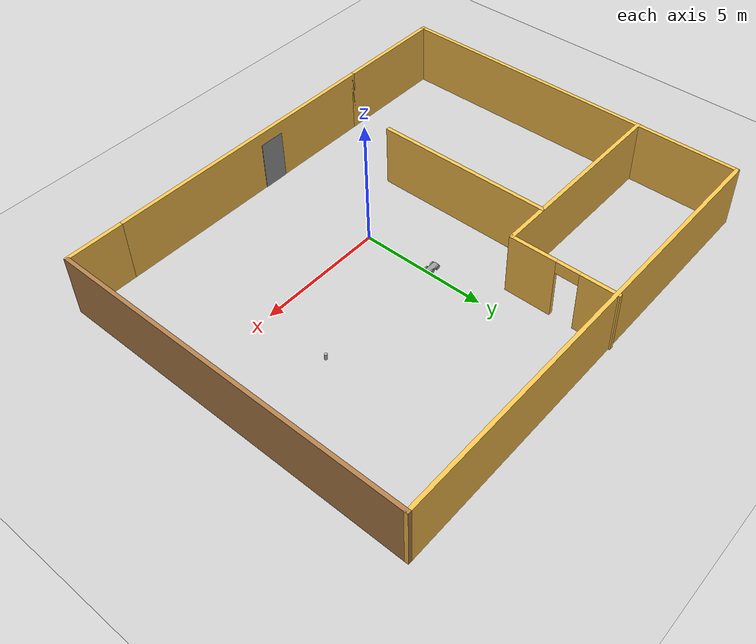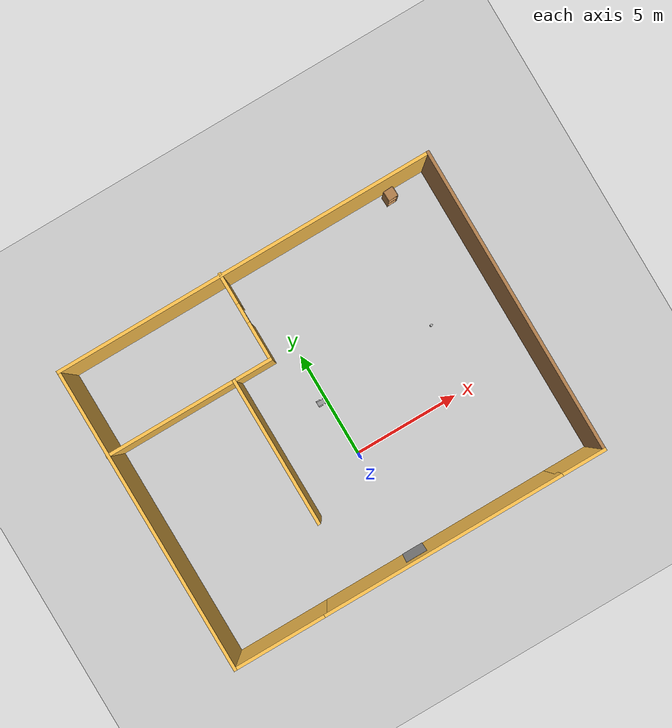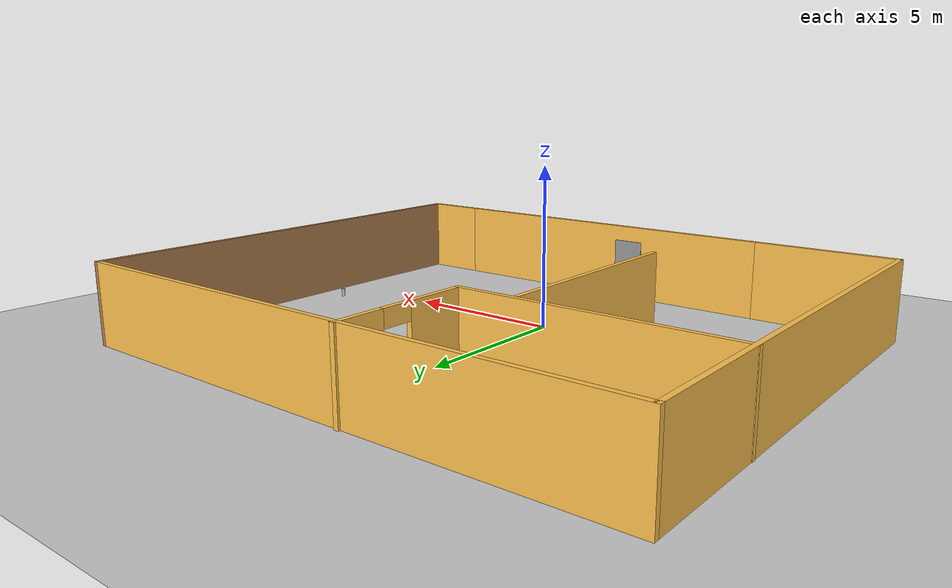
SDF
<sdf version="1.7">
 <world name="default">
  <model name="ground_plane">
   <static>1</static>
   <link name="link">
    <collision name="collision">
     <geometry><plane><normal>0 0 1</normal><size>100 100</size></plane></geometry>
     <surface>
      <contact><collide_bitmask>65535</collide_bitmask></contact>
      <friction><ode><mu>100</mu><mu2>50</mu2></ode></friction>
     </surface>
    </collision>
    <visual name="visual">
     <cast_shadows>0</cast_shadows>
     <geometry><plane><normal>0 0 1</normal><size>100 100</size></plane></geometry>
     <material>
      <script><uri>file://media/materials/scripts/gazebo.material</uri><name>Gazebo/Grey</name></script>
     </material>
    </visual>
   </link>
  </model>
  <model name="Robot_car">
   <link name="link_0">
    <inertial>
     <mass>1</mass>
     <inertia>
      <ixx>0.166667</ixx>
      <ixy>0</ixy>
      <ixz>0</ixz>
      <iyy>0.166667</iyy>
      <iyz>0</iyz>
      <izz>0.166667</izz>
     </inertia>
    </inertial>
    <pose>0 -0.034373 -0.022489 0 -0 0</pose>
    <visual name="visual">
     <geometry><box><size>0.5 0.2 0.1</size></box></geometry>
     <material>
      <lighting>1</lighting>
      <script><uri>file://media/materials/scripts/gazebo.material</uri><name>Gazebo/Grey</name></script>
      <shader type="pixel"><normal_map>__default__</normal_map></shader>
      <ambient>0.3 0.3 0.3 1</ambient>
      <diffuse>0.7 0.7 0.7 1</diffuse>
      <specular>0.01 0.01 0.01 1</specular>
      <emissive>0 0 0 1</emissive>
     </material>
    </visual>
    <collision name="collision">
     <geometry><box><size>0.5 0.2 0.1</size></box></geometry>
     <surface>
      <friction>
       <ode><mu>1</mu><mu2>1</mu2><fdir1>0 0 0</fdir1><slip1>0</slip1><slip2>0</slip2></ode>
       <torsional>
        <coefficient>1</coefficient>
        <patch_radius>0</patch_radius>
        <surface_radius>0</surface_radius>
        <use_patch_radius>1</use_patch_radius>
        <ode><slip>0</slip></ode>
       </torsional>
      </friction>
      <bounce><restitution_coefficient>0</restitution_coefficient><threshold>1e+06</threshold></bounce>
      <contact>
       <collide_without_contact>0</collide_without_contact>
       <collide_without_contact_bitmask>1</collide_without_contact_bitmask>
       <collide_bitmask>1</collide_bitmask>
       <ode>
        <soft_cfm>0</soft_cfm>
        <soft_erp>0.2</soft_erp>
        <kp>1e+13</kp>
        <kd>1</kd>
        <max_vel>0.01</max_vel>
        <min_depth>0</min_depth>
       </ode>
       <bullet>
        <split_impulse>1</split_impulse>
        <split_impulse_penetration_threshold>-0.01</split_impulse_penetration_threshold>
        <soft_cfm>0</soft_cfm>
        <soft_erp>0.2</soft_erp>
        <kp>1e+13</kp>
        <kd>1</kd>
       </bullet>
      </contact>
     </surface>
    </collision>
   </link>
   <link name="link_1">
    <inertial>
     <mass>1</mass>
     <inertia><ixx>0.145833</ixx><ixy>0</ixy><ixz>0</ixz><iyy>0.145833</iyy><iyz>0</iyz><izz>0.125</izz></inertia>
    </inertial>
    <pose>-0.15 -0.159373 -0.022489 0 -0 0</pose>
    <visual name="visual">
     <pose>0 0 0 1.5707 -0 0</pose>
     <geometry><cylinder><radius>0.1</radius><length>0.05</length></cylinder></geometry>
     <material>
      <lighting>1</lighting>
      <script><uri>file://media/materials/scripts/gazebo.material</uri><name>Gazebo/Grey</name></script>
      <shader type="pixel"><normal_map>__default__</normal_map></shader>
      <ambient>0.3 0.3 0.3 1</ambient>
      <diffuse>0.7 0.7 0.7 1</diffuse>
      <specular>0.01 0.01 0.01 1</specular>
      <emissive>0 0 0 1</emissive>
     </material>
    </visual>
    <collision name="collision">
     <pose>0 0 0 1.5707 -0 0</pose>
     <geometry><cylinder><radius>0.1</radius><length>0.05</length></cylinder></geometry>
     <surface>
      <friction>
       <ode><mu>1</mu><mu2>1</mu2><fdir1>0 0 0</fdir1><slip1>0</slip1><slip2>0</slip2></ode>
       <torsional>
        <coefficient>1</coefficient>
        <patch_radius>0</patch_radius>
        <surface_radius>0</surface_radius>
        <use_patch_radius>1</use_patch_radius>
        <ode><slip>0</slip></ode>
       </torsional>
      </friction>
      <bounce><restitution_coefficient>0</restitution_coefficient><threshold>1e+06</threshold></bounce>
      <contact>
       <collide_without_contact>0</collide_without_contact>
       <collide_without_contact_bitmask>1</collide_without_contact_bitmask>
       <collide_bitmask>1</collide_bitmask>
       <ode>
        <soft_cfm>0</soft_cfm>
        <soft_erp>0.2</soft_erp>
        <kp>1e+13</kp>
        <kd>1</kd>
        <max_vel>0.01</max_vel>
        <min_depth>0</min_depth>
       </ode>
       <bullet>
        <split_impulse>1</split_impulse>
        <split_impulse_penetration_threshold>-0.01</split_impulse_penetration_threshold>
        <soft_cfm>0</soft_cfm>
        <soft_erp>0.2</soft_erp>
        <kp>1e+13</kp>
        <kd>1</kd>
       </bullet>
      </contact>
     </surface>
    </collision>
   </link>
   <link name="link_1_clone">
    <inertial>
     <mass>1</mass>
     <inertia><ixx>0.145833</ixx><ixy>0</ixy><ixz>0</ixz><iyy>0.145833</iyy><iyz>0</iyz><izz>0.125</izz></inertia>
    </inertial>
    <pose>-0.15 0.090627 -0.022489 0 -0 0</pose>
    <visual name="visual">
     <pose>0 0 0 1.5707 -0 0</pose>
     <geometry><cylinder><radius>0.1</radius><length>0.05</length></cylinder></geometry>
     <material>
      <lighting>1</lighting>
      <script><uri>file://media/materials/scripts/gazebo.material</uri><name>Gazebo/Grey</name></script>
      <shader type="pixel"><normal_map>__default__</normal_map></shader>
      <ambient>0.3 0.3 0.3 1</ambient>
      <diffuse>0.7 0.7 0.7 1</diffuse>
      <specular>0.01 0.01 0.01 1</specular>
      <emissive>0 0 0 1</emissive>
     </material>
    </visual>
    <collision name="collision">
     <pose>0 0 0 1.5707 -0 0</pose>
     <geometry><cylinder><radius>0.1</radius><length>0.05</length></cylinder></geometry>
     <surface>
      <friction>
       <ode><mu>1</mu><mu2>1</mu2><fdir1>0 0 0</fdir1><slip1>0</slip1><slip2>0</slip2></ode>
       <torsional>
        <coefficient>1</coefficient>
        <patch_radius>0</patch_radius>
        <surface_radius>0</surface_radius>
        <use_patch_radius>1</use_patch_radius>
        <ode><slip>0</slip></ode>
       </torsional>
      </friction>
      <bounce><restitution_coefficient>0</restitution_coefficient><threshold>1e+06</threshold></bounce>
      <contact>
       <collide_without_contact>0</collide_without_contact>
       <collide_without_contact_bitmask>1</collide_without_contact_bitmask>
       <collide_bitmask>1</collide_bitmask>
       <ode>
        <soft_cfm>0</soft_cfm>
        <soft_erp>0.2</soft_erp>
        <kp>1e+13</kp>
        <kd>1</kd>
        <max_vel>0.01</max_vel>
        <min_depth>0</min_depth>
       </ode>
       <bullet>
        <split_impulse>1</split_impulse>
        <split_impulse_penetration_threshold>-0.01</split_impulse_penetration_threshold>
        <soft_cfm>0</soft_cfm>
        <soft_erp>0.2</soft_erp>
        <kp>1e+13</kp>
        <kd>1</kd>
       </bullet>
      </contact>
     </surface>
    </collision>
   </link>
   <link name="link_1_clone_clone">
    <inertial>
     <mass>1</mass>
     <inertia><ixx>0.145833</ixx><ixy>0</ixy><ixz>0</ixz><iyy>0.145833</iyy><iyz>0</iyz><izz>0.125</izz></inertia>
    </inertial>
    <pose>0.15 0.090627 -0.022489 0 -0 0</pose>
    <visual name="visual">
     <pose>0 0 0 1.5707 -0 0</pose>
     <geometry><cylinder><radius>0.1</radius><length>0.05</length></cylinder></geometry>
     <material>
      <lighting>1</lighting>
      <script><uri>file://media/materials/scripts/gazebo.material</uri><name>Gazebo/Grey</name></script>
      <shader type="pixel"><normal_map>__default__</normal_map></shader>
      <ambient>0.3 0.3 0.3 1</ambient>
      <diffuse>0.7 0.7 0.7 1</diffuse>
      <specular>0.01 0.01 0.01 1</specular>
      <emissive>0 0 0 1</emissive>
     </material>
    </visual>
    <collision name="collision">
     <pose>0 0 0 1.5707 -0 0</pose>
     <geometry><cylinder><radius>0.1</radius><length>0.05</length></cylinder></geometry>
     <surface>
      <friction>
       <ode><mu>1</mu><mu2>1</mu2><fdir1>0 0 0</fdir1><slip1>0</slip1><slip2>0</slip2></ode>
       <torsional>
        <coefficient>1</coefficient>
        <patch_radius>0</patch_radius>
        <surface_radius>0</surface_radius>
        <use_patch_radius>1</use_patch_radius>
        <ode><slip>0</slip></ode>
       </torsional>
      </friction>
      <bounce><restitution_coefficient>0</restitution_coefficient><threshold>1e+06</threshold></bounce>
      <contact>
       <collide_without_contact>0</collide_without_contact>
       <collide_without_contact_bitmask>1</collide_without_contact_bitmask>
       <collide_bitmask>1</collide_bitmask>
       <ode>
        <soft_cfm>0</soft_cfm>
        <soft_erp>0.2</soft_erp>
        <kp>1e+13</kp>
        <kd>1</kd>
        <max_vel>0.01</max_vel>
        <min_depth>0</min_depth>
       </ode>
       <bullet>
        <split_impulse>1</split_impulse>
        <split_impulse_penetration_threshold>-0.01</split_impulse_penetration_threshold>
        <soft_cfm>0</soft_cfm>
        <soft_erp>0.2</soft_erp>
        <kp>1e+13</kp>
        <kd>1</kd>
       </bullet>
      </contact>
     </surface>
    </collision>
   </link>
   <link name="link_1_clone_clone_0">
    <inertial>
     <mass>1</mass>
     <inertia><ixx>0.145833</ixx><ixy>0</ixy><ixz>0</ixz><iyy>0.145833</iyy><iyz>0</iyz><izz>0.125</izz></inertia>
    </inertial>
    <pose>0.15 -0.159373 -0.022489 0 -0 0</pose>
    <visual name="visual">
     <pose>0 0 0 1.5707 -0 0</pose>
     <geometry><cylinder><radius>0.1</radius><length>0.05</length></cylinder></geometry>
     <material>
      <lighting>1</lighting>
      <script><uri>file://media/materials/scripts/gazebo.material</uri><name>Gazebo/Grey</name></script>
      <shader type="pixel"><normal_map>__default__</normal_map></shader>
      <ambient>0.3 0.3 0.3 1</ambient>
      <diffuse>0.7 0.7 0.7 1</diffuse>
      <specular>0.01 0.01 0.01 1</specular>
      <emissive>0 0 0 1</emissive>
     </material>
    </visual>
    <collision name="collision">
     <pose>0 0 0 1.5707 -0 0</pose>
     <geometry><cylinder><radius>0.1</radius><length>0.05</length></cylinder></geometry>
     <surface>
      <friction>
       <ode><mu>1</mu><mu2>1</mu2><fdir1>0 0 0</fdir1><slip1>0</slip1><slip2>0</slip2></ode>
       <torsional>
        <coefficient>1</coefficient>
        <patch_radius>0</patch_radius>
        <surface_radius>0</surface_radius>
        <use_patch_radius>1</use_patch_radius>
        <ode><slip>0</slip></ode>
       </torsional>
      </friction>
      <bounce><restitution_coefficient>0</restitution_coefficient><threshold>1e+06</threshold></bounce>
      <contact>
       <collide_without_contact>0</collide_without_contact>
       <collide_without_contact_bitmask>1</collide_without_contact_bitmask>
       <collide_bitmask>1</collide_bitmask>
       <ode>
        <soft_cfm>0</soft_cfm>
        <soft_erp>0.2</soft_erp>
        <kp>1e+13</kp>
        <kd>1</kd>
        <max_vel>0.01</max_vel>
        <min_depth>0</min_depth>
       </ode>
       <bullet>
        <split_impulse>1</split_impulse>
        <split_impulse_penetration_threshold>-0.01</split_impulse_penetration_threshold>
        <soft_cfm>0</soft_cfm>
        <soft_erp>0.2</soft_erp>
        <kp>1e+13</kp>
        <kd>1</kd>
       </bullet>
      </contact>
     </surface>
    </collision>
   </link>
   <joint name="link_0_JOINT_1" type="revolute">
    <parent>link_0</parent>
    <child>link_1</child>
    <axis>
     <xyz>0 1 0</xyz>
     <limit>
      <lower>-1.79769e+308</lower>
      <upper>1.79769e+308</upper>
      <effort>-1</effort>
      <velocity>-1</velocity>
     </limit>
     <dynamics>
      <spring_reference>0</spring_reference>
      <spring_stiffness>0</spring_stiffness>
      <damping>0</damping>
     </dynamics>
    </axis>
    <physics>
     <ode><limit><cfm>0</cfm><erp>0.2</erp></limit><suspension><cfm>0</cfm><erp>0.2</erp></suspension></ode>
    </physics>
   </joint>
   <joint name="link_0_JOINT_2" type="revolute">
    <parent>link_0</parent>
    <child>link_1_clone</child>
    <axis>
     <xyz>0 1 0</xyz>
     <limit>
      <lower>-1.79769e+308</lower>
      <upper>1.79769e+308</upper>
      <effort>-1</effort>
      <velocity>-1</velocity>
     </limit>
     <dynamics>
      <spring_reference>0</spring_reference>
      <spring_stiffness>0</spring_stiffness>
      <damping>0</damping>
     </dynamics>
    </axis>
    <physics>
     <ode><limit><cfm>0</cfm><erp>0.2</erp></limit><suspension><cfm>0</cfm><erp>0.2</erp></suspension></ode>
    </physics>
   </joint>
   <joint name="link_0_JOINT_3" type="revolute">
    <parent>link_0</parent>
    <child>link_1_clone_clone_0</child>
    <axis>
     <xyz>0 1 0</xyz>
     <limit>
      <lower>-1.79769e+308</lower>
      <upper>1.79769e+308</upper>
      <effort>-1</effort>
      <velocity>-1</velocity>
     </limit>
     <dynamics>
      <spring_reference>0</spring_reference>
      <spring_stiffness>0</spring_stiffness>
      <damping>0</damping>
     </dynamics>
    </axis>
    <physics>
     <ode><limit><cfm>0</cfm><erp>0.2</erp></limit><suspension><cfm>0</cfm><erp>0.2</erp></suspension></ode>
    </physics>
   </joint>
   <joint name="link_0_JOINT_4" type="revolute">
    <parent>link_0</parent>
    <child>link_1_clone_clone</child>
    <axis>
     <xyz>0 1 0</xyz>
     <limit>
      <lower>-1.79769e+308</lower>
      <upper>1.79769e+308</upper>
      <effort>-1</effort>
      <velocity>-1</velocity>
     </limit>
     <dynamics>
      <spring_reference>0</spring_reference>
      <spring_stiffness>0</spring_stiffness>
      <damping>0</damping>
     </dynamics>
    </axis>
    <physics>
     <ode><limit><cfm>0</cfm><erp>0.2</erp></limit><suspension><cfm>0</cfm><erp>0.2</erp></suspension></ode>
    </physics>
   </joint>
   <static>0</static>
   <pose>-0.200075 2.80023 0.122486 -9e-06 -1.9e-05 -0.009643</pose>
  </model>
  <model name="my_building">
   <pose>-0.071706 2.24481 0 0 -0 0</pose>
   <link name="Door_0">
    <collision name="Door_0_Collision">
     <geometry><box><size>1.00494 0.2 2</size></box></geometry>
     <pose>0 0 1 0 -0 0</pose>
    </collision>
    <visual name="Door_0_Visual">
     <pose>0 0 1 0 -0 0</pose>
     <geometry><box><size>1.00494 0.2 2</size></box></geometry>
     <material>
      <script><uri>file://media/materials/scripts/gazebo.material</uri><name>Gazebo/Grey</name></script>
     </material>
    </visual>
    <pose>-0.030764 -7.21481 0 0 -0 0</pose>
   </link>
   <link name="Wall_0">
    <collision name="Wall_0_Collision">
     <geometry><box><size>11.5 0.15 2.5</size></box></geometry>
     <pose>0 0 1.25 0 -0 0</pose>
    </collision>
    <visual name="Wall_0_Visual">
     <pose>0 0 1.25 0 -0 0</pose>
     <geometry><box><size>11.5 0.15 2.5</size></box></geometry>
     <material>
      <script><uri>file://media/materials/scripts/gazebo.material</uri><name>Gazebo/Grey</name></script>
      <ambient>1 0.764706 0.305882 1</ambient>
     </material>
     <meta><layer>0</layer></meta>
    </visual>
    <pose>1.15982 -7.20614 0 0 -0 0</pose>
   </link>
   <link name="Wall_1">
    <collision name="Wall_1_Collision">
     <geometry><box><size>2.25 0.15 2.5</size></box></geometry>
     <pose>0 0 1.25 0 -0 0</pose>
    </collision>
    <visual name="Wall_1_Visual">
     <pose>0 0 1.25 0 -0 0</pose>
     <geometry><box><size>2.25 0.15 2.5</size></box></geometry>
     <material>
      <script><uri>file://media/materials/scripts/gazebo.material</uri><name>Gazebo/Grey</name></script>
      <ambient>1 0.764706 0.305882 1</ambient>
     </material>
     <meta><layer>0</layer></meta>
    </visual>
    <pose>7.88482 -7.20614 0 0 -0 0</pose>
   </link>
   <link name="Wall_10">
    <collision name="Wall_10_Collision">
     <geometry><box><size>7 0.15 2.5</size></box></geometry>
     <pose>0 0 1.25 0 -0 0</pose>
    </collision>
    <visual name="Wall_10_Visual">
     <pose>0 0 1.25 0 -0 0</pose>
     <geometry><box><size>7 0.15 2.5</size></box></geometry>
     <material>
      <script><uri>file://media/materials/scripts/gazebo.material</uri><name>Gazebo/Grey</name></script>
      <ambient>1 0.764706 0.305882 1</ambient>
     </material>
     <meta><layer>0</layer></meta>
    </visual>
    <pose>-2.83219 -0.339183 0 0 -0 -1.5708</pose>
   </link>
   <link name="Wall_2">
    <collision name="Wall_2_Collision">
     <geometry><box><size>14.5 0.15 2.5</size></box></geometry>
     <pose>0 0 1.25 0 -0 0</pose>
    </collision>
    <visual name="Wall_2_Visual">
     <pose>0 0 1.25 0 -0 0</pose>
     <geometry><box><size>14.5 0.15 2.5</size></box></geometry>
     <material>
      <script><uri>file://media/materials/scripts/gazebo.material</uri><name>Gazebo/Wood</name></script>
      <ambient>1 1 1 1</ambient>
     </material>
     <meta><layer>0</layer></meta>
    </visual>
    <pose>8.93482 -0.031137 0 0 -0 1.5708</pose>
   </link>
   <link name="Wall_3">
    <collision name="Wall_3_Collision">
     <geometry><box><size>18 0.15 2.5</size></box></geometry>
     <pose>0 0 1.25 0 -0 0</pose>
    </collision>
    <visual name="Wall_3_Visual">
     <pose>0 0 1.25 0 -0 0</pose>
     <geometry><box><size>18 0.15 2.5</size></box></geometry>
     <material>
      <script><uri>file://media/materials/scripts/gazebo.material</uri><name>Gazebo/Grey</name></script>
      <ambient>1 0.764706 0.305882 1</ambient>
     </material>
     <meta><layer>0</layer></meta>
    </visual>
    <pose>0.009824 7.14386 0 0 -0 3.14159</pose>
   </link>
   <link name="Wall_4">
    <collision name="Wall_4_Collision">
     <geometry><box><size>14.5 0.15 2.5</size></box></geometry>
     <pose>0 0 1.25 0 -0 0</pose>
    </collision>
    <visual name="Wall_4_Visual">
     <pose>0 0 1.25 0 -0 0</pose>
     <geometry><box><size>14.5 0.15 2.5</size></box></geometry>
     <material>
      <script><uri>file://media/materials/scripts/gazebo.material</uri><name>Gazebo/Grey</name></script>
      <ambient>1 0.764706 0.305882 1</ambient>
     </material>
     <meta><layer>0</layer></meta>
    </visual>
    <pose>-8.91518 -0.031137 0 0 -0 -1.5708</pose>
   </link>
   <link name="Wall_5">
    <collision name="Wall_5_Collision">
     <geometry><box><size>4.55 0.15 2.5</size></box></geometry>
     <pose>0 0 1.25 0 -0 0</pose>
    </collision>
    <visual name="Wall_5_Visual">
     <pose>0 0 1.25 0 -0 0</pose>
     <geometry><box><size>4.55 0.15 2.5</size></box></geometry>
     <material>
      <script><uri>file://media/materials/scripts/gazebo.material</uri><name>Gazebo/Grey</name></script>
      <ambient>1 0.764706 0.305882 1</ambient>
     </material>
     <meta><layer>0</layer></meta>
    </visual>
    <pose>-6.71518 -7.20614 0 0 -0 0</pose>
   </link>
   <link name="Wall_7">
    <collision name="Wall_7_Collision">
     <geometry><box><size>8 0.15 2.5</size></box></geometry>
     <pose>0 0 1.25 0 -0 0</pose>
    </collision>
    <visual name="Wall_7_Visual">
     <pose>0 0 1.25 0 -0 0</pose>
     <geometry><box><size>8 0.15 2.5</size></box></geometry>
     <material>
      <script><uri>file://media/materials/scripts/gazebo.material</uri><name>Gazebo/Grey</name></script>
      <ambient>1 0.764706 0.305882 1</ambient>
     </material>
     <meta><layer>0</layer></meta>
    </visual>
    <pose>-5.00983 3.10614 0 0 -0 0</pose>
   </link>
   <link name="Wall_8">
    <pose>-1.08482 5.15614 0 0 -0 1.5708</pose>
    <visual name="Wall_8_Visual_0">
     <pose>-1.19826 0 1.25 0 -0 0</pose>
     <geometry><box><size>1.85347 0.15 2.5</size></box></geometry>
     <material>
      <script><uri>file://media/materials/scripts/gazebo.material</uri><name>Gazebo/Grey</name></script>
      <ambient>1 0.764706 0.305882 1</ambient>
     </material>
     <meta><layer>0</layer></meta>
    </visual>
    <collision name="Wall_8_Collision_0">
     <geometry><box><size>1.85347 0.15 2.5</size></box></geometry>
     <pose>-1.19826 0 1.25 0 -0 0</pose>
    </collision>
    <visual name="Wall_8_Visual_1">
     <pose>1.37674 0 1.25 0 -0 0</pose>
     <geometry><box><size>1.49653 0.15 2.5</size></box></geometry>
     <material>
      <script><uri>file://media/materials/scripts/gazebo.material</uri><name>Gazebo/Grey</name></script>
      <ambient>1 0.764706 0.305882 1</ambient>
     </material>
     <meta><layer>0</layer></meta>
    </visual>
    <collision name="Wall_8_Collision_1">
     <geometry><box><size>1.49653 0.15 2.5</size></box></geometry>
     <pose>1.37674 0 1.25 0 -0 0</pose>
    </collision>
    <visual name="Wall_8_Visual_2">
     <pose>0.178471 0 2.25 0 -0 0</pose>
     <geometry><box><size>0.9 0.15 0.5</size></box></geometry>
     <material>
      <script><uri>file://media/materials/scripts/gazebo.material</uri><name>Gazebo/Grey</name></script>
      <ambient>1 0.764706 0.305882 1</ambient>
     </material>
     <meta><layer>0</layer></meta>
    </visual>
    <collision name="Wall_8_Collision_2">
     <geometry><box><size>0.9 0.15 0.5</size></box></geometry>
     <pose>0.178471 0 2.25 0 -0 0</pose>
    </collision>
   </link>
   <static>1</static>
  </model>
  <model name="cabinet">
   <static>1</static>
   <link name="cabinet_bottom_plate">
    <inertial>
     <pose>0 0 -1 0 -0 0</pose>
     <inertia><ixx>2.05</ixx><ixy>0</ixy><ixz>0</ixz><iyy>2.05</iyy><iyz>0</iyz><izz>2.05</izz></inertia>
     <mass>25</mass>
    </inertial>
    <collision name="cabinet_bottom_plate_geom">
     <pose>0 0 0.01 0 -0 0</pose>
     <geometry><box><size>0.45 0.45 0.02</size></box></geometry>
    </collision>
    <visual name="cabinet_bottom_plate_geom_visual">
     <pose>0 0 0.01 0 -0 0</pose>
     <geometry><box><size>0.45 0.45 0.02</size></box></geometry>
     <material>
      <script><uri>file://media/materials/scripts/gazebo.material</uri><name>Gazebo/Wood</name></script>
     </material>
    </visual>
    <collision name="cabinet_bottom_plate_geom_cabinet_back_plate">
     <pose>0.235 0 0.51 0 -0 0</pose>
     <geometry><box><size>0.02 0.45 1.02</size></box></geometry>
    </collision>
    <visual name="cabinet_bottom_plate_geom_cabinet_back_plate_visual">
     <pose>0.235 0 0.51 0 -0 0</pose>
     <geometry><box><size>0.02 0.45 1.02</size></box></geometry>
     <material>
      <script><uri>file://media/materials/scripts/gazebo.material</uri><name>Gazebo/Wood</name></script>
     </material>
    </visual>
    <collision name="cabinet_bottom_plate_geom_cabinet_left_plate">
     <pose>0 0.235 0.51 0 -0 0</pose>
     <geometry><box><size>0.45 0.02 1.02</size></box></geometry>
    </collision>
    <visual name="cabinet_bottom_plate_geom_cabinet_left_plate_visual">
     <pose>0 0.235 0.51 0 -0 0</pose>
     <geometry><box><size>0.45 0.02 1.02</size></box></geometry>
     <material>
      <script><uri>file://media/materials/scripts/gazebo.material</uri><name>Gazebo/Wood</name></script>
     </material>
    </visual>
    <collision name="cabinet_bottom_plate_geom_cabinet_middle_plate">
     <pose>0 0 0.51 0 -0 0</pose>
     <geometry><box><size>0.45 0.45 0.02</size></box></geometry>
    </collision>
    <visual name="cabinet_bottom_plate_geom_cabinet_middle_plate_visual">
     <pose>0 0 0.51 0 -0 0</pose>
     <geometry><box><size>0.45 0.45 0.02</size></box></geometry>
     <material>
      <script><uri>file://media/materials/scripts/gazebo.material</uri><name>Gazebo/Wood</name></script>
     </material>
    </visual>
    <collision name="cabinet_bottom_plate_geom_cabinet_right_plate">
     <pose>0 -0.235 0.51 0 -0 0</pose>
     <geometry><box><size>0.45 0.02 1.02</size></box></geometry>
    </collision>
    <visual name="cabinet_bottom_plate_geom_cabinet_right_plate_visual">
     <pose>0 -0.235 0.51 0 -0 0</pose>
     <geometry><box><size>0.45 0.02 1.02</size></box></geometry>
     <material>
      <script><uri>file://media/materials/scripts/gazebo.material</uri><name>Gazebo/Wood</name></script>
     </material>
    </visual>
    <collision name="cabinet_bottom_plate_geom_cabinet_top_plate">
     <pose>0 0 1.01 0 -0 0</pose>
     <geometry><box><size>0.45 0.45 0.02</size></box></geometry>
    </collision>
    <visual name="cabinet_bottom_plate_geom_cabinet_top_plate_visual">
     <pose>0 0 1.01 0 -0 0</pose>
     <geometry><box><size>0.45 0.45 0.02</size></box></geometry>
     <material>
      <script><uri>file://media/materials/scripts/gazebo.material</uri><name>Gazebo/Wood</name></script>
     </material>
    </visual>
   </link>
   <pose>6.93298 8.98206 0 0 -0 1.60477</pose>
  </model>
  <model name="beer">
   <link name="link">
    <pose>0 0 0.115 0 -0 0</pose>
    <inertial>
     <mass>0.39</mass>
     <inertia><ixx>0.00058</ixx><ixy>0</ixy><ixz>0</ixz><iyy>0.00058</iyy><iyz>0</iyz><izz>0.00019</izz></inertia>
    </inertial>
    <collision name="collision">
     <geometry><cylinder><radius>0.055</radius><length>0.23</length></cylinder></geometry>
    </collision>
    <visual name="visual">
     <geometry><cylinder><radius>0.055</radius><length>0.23</length></cylinder></geometry>
     <material>
      <script>
       <uri>model://beer/materials/scripts</uri>
       <uri>model://beer/materials/textures</uri>
       <name>Beer/Diffuse</name>
      </script>
     </material>
    </visual>
   </link>
   <pose>5.55474 3.20454 0.775002 2.9e-05 3e-06 0.001508</pose>
  </model>
 </world>
</sdf>
